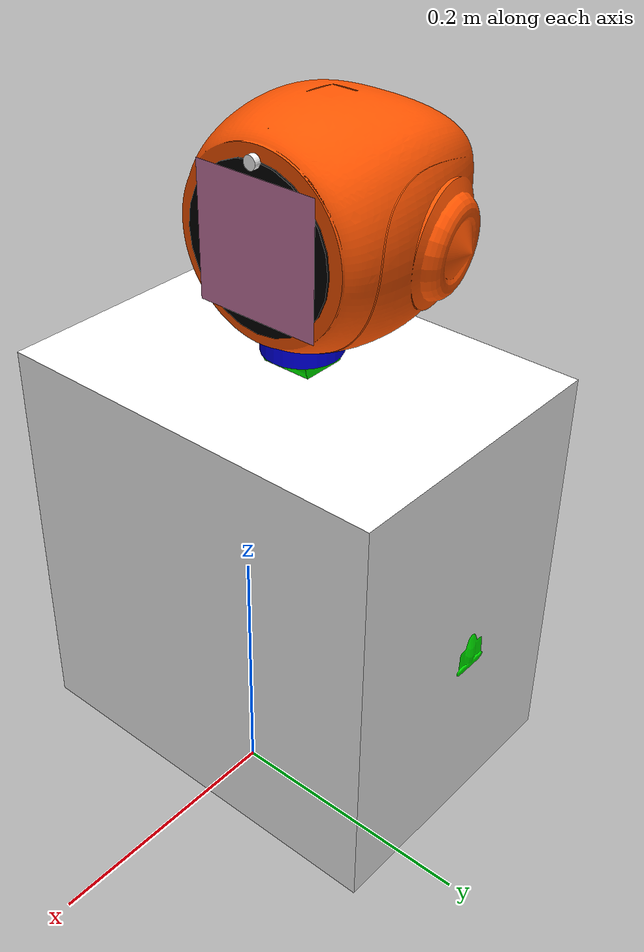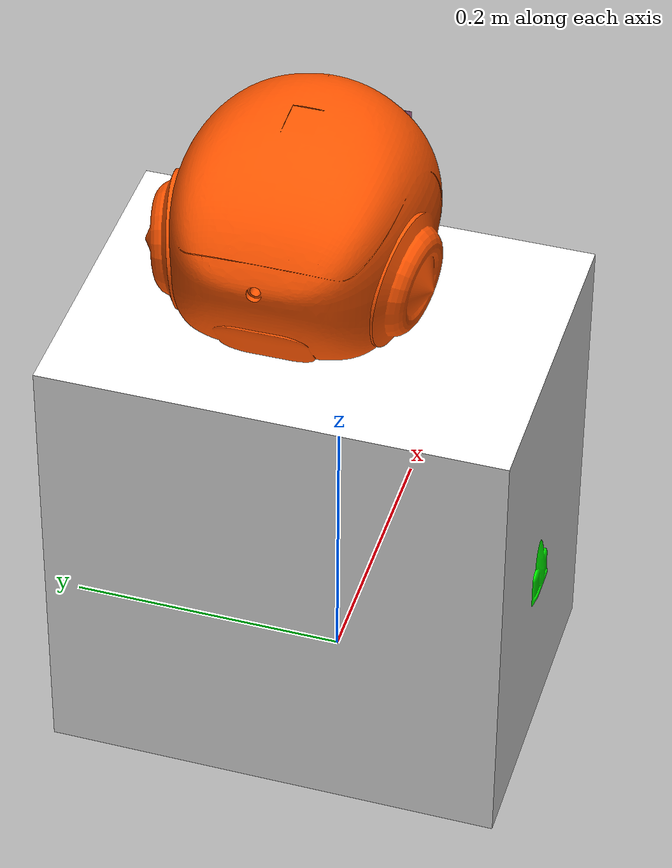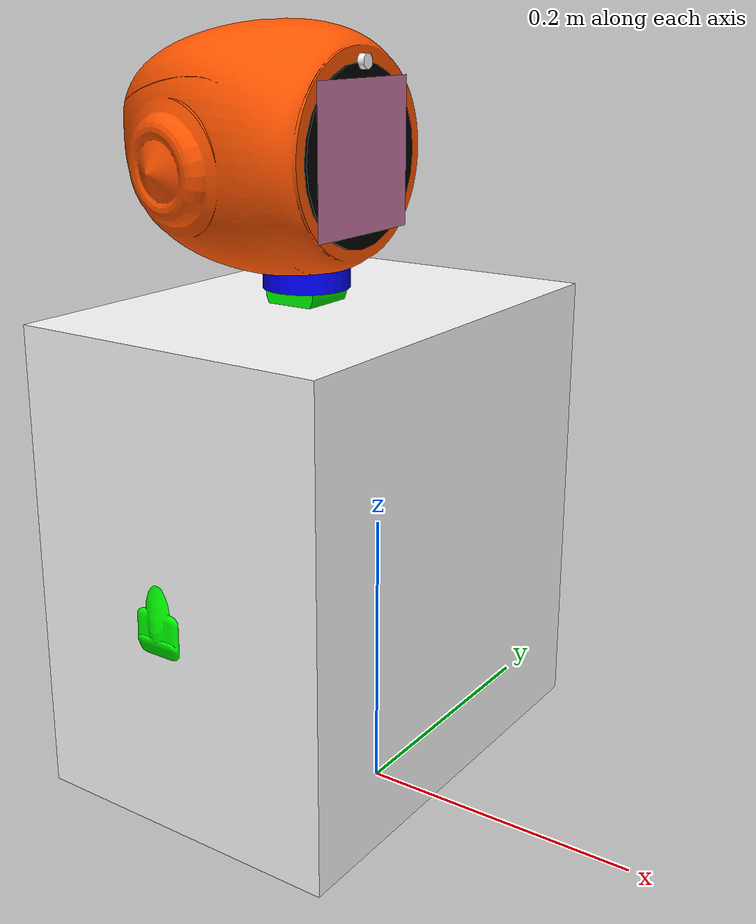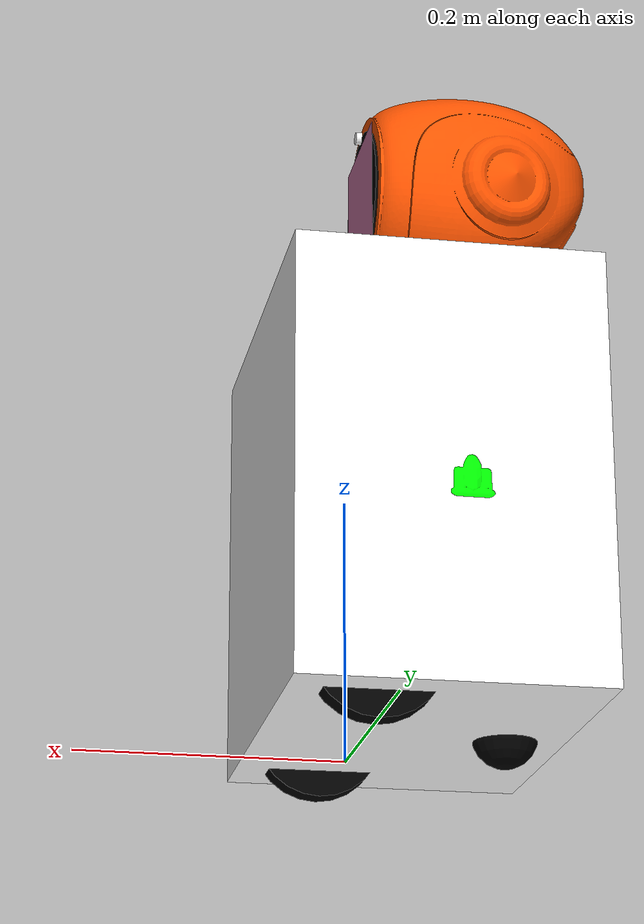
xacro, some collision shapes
<?xml version="1.0"?>
<robot name="smarrtino" xmlns:xacro="http://ros.org/wiki/xacro">

  <xacro:arg name="namespace" default="" />

  <xacro:property name="body_mass" value="0.60" />
  <xacro:property name="body_radius" value="0.1" />

  <xacro:property name="base_w" value="0.22" />
  <xacro:property name="base_l" value="0.20" />
  <xacro:property name="base_h" value="0.33" />

  <xacro:property name="wheel_r" value="0.05" />
  <xacro:property name="wheel_l" value="0.02" />

  <xacro:property name="wheel_friction" value="0.001" />
  <xacro:property name="wheel_damping" value="0.001" />
  <xacro:property name="wheel_max_effort" value="100.0" />
  <xacro:property name="wheel_max_velocity" value="${1 / wheel_r}" /> <!-- 1/r rad/s -> 1 m/s -->

  <xacro:property name="arm_mass" value="0.08" />
  <xacro:property name="arm_radius" value="0.02" />
  <xacro:property name="arm_length" value="0.10" />

  <xacro:property name="arm_max_effort" value="30.0" />
  <xacro:property name="arm_max_velocity" value="1.0" />
  <xacro:property name="arm_friction" value="0.001" />
  <xacro:property name="arm_damping" value="0.01" />
  <xacro:property name="arm_lower_limit" value="${-5*pi/4}" />
  <xacro:property name="arm_upper_limit" value="${pi/4}" />

  <xacro:property name="head_mass" value="0.10" />
  <xacro:property name="head_radius" value="0.05" />
  <xacro:property name="head_max_effort" value="30.0" />
  <xacro:property name="head_max_velocity" value="1.0" />
  <xacro:property name="head_friction" value="0.02" />
  <xacro:property name="head_damping" value="0.02" />
  <xacro:property name="head_pan_lower_limit" value="${-pi/2}" />
  <xacro:property name="head_pan_upper_limit" value="${pi/2}" />
  <xacro:property name="head_tilt_lower_limit" value="${-pi/4}" />
  <xacro:property name="head_tilt_upper_limit" value="${pi/4}" />

  <xacro:include filename="$(find marrtino_gazebo)/urdf/inertia.xacro" />

  <material name="orange"><color rgba="1.0 0.33 0.0 1.0"/></material>
  <material name="red"><color rgba="0.8 0 0 1"/></material>
  <material name="green"><color rgba="0 1 0 1"/></material>
  <material name="blue"><color rgba="0 0 1 1"/></material>
  <material name="black"><color rgba="0 0 0 1.0"/></material>
  <material name="grey"><color rgba="0.7 0.7 0.7 1.0"/></material>
  <material name="white"><color rgba="1 1 1 1.0"/></material>
  <material name="green_t"><color rgba="0 1 0 0.5"/></material>

  <link name="base_footprint"/>

  <link name="base_link">
    <visual>
      <geometry>
        <mesh filename="$(find marrtino_gazebo)/urdf/meshes/smarrtino_body.stl" scale="0.001 0.001 0.001"/>
      </geometry>
      <origin xyz="0 0 0" rpy="0 0 ${pi/2}"/>
      <material name="white"/>
    </visual>

    <collision>
      <geometry>
        <box size="${base_l+0.03} ${base_w+0.10} ${base_h}"/>
      </geometry>
      <origin xyz="-0.05 0 ${base_h/2}" rpy="0 0 0"/>
    </collision>

    <inertial>
      <origin xyz="0 0 0.1" rpy="0 0 0"/>
      <mass value="${body_mass}"/>
      <inertia
        ixx="${(2/5) * body_mass * (base_w*base_w/4)}"
        ixy="0.0"
        ixz="0.0"
        iyy="${(2/5) * body_mass * (base_w*base_w/4)}"
        iyz="0.0"
        izz="${(2/5) * body_mass * (base_w*base_w/4)}"
      />
    </inertial>
  </link>

  <link name="left_wheel">
    <visual>
        <geometry>
            <cylinder radius="${wheel_r}" length="${wheel_l}"/>
        </geometry>
        <origin xyz="0.0 0.0 0.0" rpy="${pi/2} 0.0 0.0"/>
        <material name="black"/>
    </visual>
    <collision>
        <geometry>
            <cylinder radius="${wheel_r}" length="${wheel_l}"/>
        </geometry>
        <origin xyz="0.0 0.0 0.0" rpy="${pi/2} 0.0 0.0"/>
        <surface>
          <friction>
            <ode>
              <mu>1.0</mu>
              <mu2>1.0</mu2>
            </ode>
            <torsional>
              <ode/>
            </torsional>
          </friction>
        </surface>
    </collision>
    <xacro:cylinder_inertial_roll mass="0.1" radius="${wheel_r}" length="${wheel_l}" roll="${pi/2}"/>
  </link>

  <link name="right_wheel">
    <visual>
        <geometry>
            <cylinder radius="${wheel_r}" length="${wheel_l}"/>
        </geometry>
        <origin xyz="0.0 0.0 0.0" rpy="${pi/2} 0.0 0.0"/>
        <material name="black"/>
    </visual>
    <collision>
        <geometry>
            <cylinder radius="${wheel_r}" length="${wheel_l}"/>
        </geometry>
        <origin xyz="0.0 0.0 0.0" rpy="${pi/2} 0.0 0.0"/>
        <surface>
          <friction>
            <ode>
              <mu>1.0</mu>
              <mu2>1.0</mu2>
            </ode>
            <torsional>
              <ode/>
            </torsional>
          </friction>
        </surface>
    </collision>
    <xacro:cylinder_inertial_roll mass="0.1" radius="${wheel_r}" length="${wheel_l}" roll="${pi/2}"/>
  </link>

  <link name="caster_wheel">
    <visual>
        <geometry>
            <sphere radius="${wheel_r/2}"/>
        </geometry>
        <origin xyz="0.0 0.0 0.0" rpy="0.0 0.0 0.0"/>
        <material name="black"/>
    </visual>
    <collision>
        <geometry>
            <sphere radius="${wheel_r/2}"/>
        </geometry>
        <origin xyz="0.0 0.0 0.0" rpy="0.0 0.0 0.0"/>
        <surface>
          <friction>
            <ode>
              <mu>0.001</mu>
              <mu2>0.001</mu2>
            </ode>
            <torsional>
              <ode/>
            </torsional>
          </friction>
        </surface>
    </collision>
    <xacro:sphere_inertial mass="0.2" radius="${wheel_r/2}" />
  </link>

  <link name="top_base_link" />

  <link name="head_link">
    <visual>
      <geometry>
        <mesh filename="$(find marrtino_gazebo)/urdf/meshes/smarrtino_head.stl" scale="0.001 0.001 0.001"/>
      </geometry>
      <origin xyz="0.02 0 -0.4" rpy="0 0 ${pi/2}"/>
      <material name="orange"/>
    </visual>

    <visual>
      <geometry>
          <cylinder radius="0.06" length="0.002"/>
      </geometry>
      <origin xyz="0.045 0 0.01" rpy="0 ${pi/2} 0"/>
      <material name="black"/>
    </visual>

    <visual>
      <geometry>
          <cylinder radius="0.06" length="0.002"/>
      </geometry>
      <origin xyz="0.045 0 0.01" rpy="0 ${pi/2} 0"/>
      <material name="black"/>
    </visual>

    <visual name="front">
      <origin xyz="0.047 0 -0.04" rpy="0 0 0"/>
      <geometry>
        <mesh filename="$(find marrtino_gazebo)/urdf/meshes/face.dae" scale="0.01 0.20 0.20" />
      </geometry>
    </visual>

    <collision>
      <geometry>
        <sphere radius="${head_radius+0.05}"/>
      </geometry>
      <origin xyz="-0.02 0 0.02" rpy="0 0 ${pi/2}"/>
    </collision>

    <xacro:sphere_inertial_roll mass="${head_mass}" radius="${head_radius}" roll="${pi/2}"/>
  </link>

  <link name="base_head_link">
    <visual>
        <geometry>
            <cylinder radius="0.03" length="0.02"/>
        </geometry>
        <origin xyz="0.0 0.0 0.0" rpy="0.0 0.0 0.0"/>
        <material name="blue"/>
    </visual>
  </link>

  <link name="tilt_head_link">
    <visual>
        <geometry>
            <cylinder radius="0.02" length="0.04"/>
        </geometry>
        <origin xyz="0.0 0.0 0.0" rpy="0.0 ${pi/2} ${pi/2}"/>
        <material name="green"/>
    </visual>
    <xacro:sphere_inertial mass="0.01" radius="0.01" />
  </link>

  <link name="camera_optical_link">
    <visual>
        <geometry>
            <cylinder radius="0.005" length="0.005"/>
        </geometry>
        <origin xyz="0.0 0.0 0.0" rpy="0.0 ${pi/2} 0.0"/>
        <material name="white"/>
    </visual>
  </link>

  <link name="imu_link">
    <visual>
      <origin rpy="0 0 0" xyz="0 0 0.0"/>
      <geometry>
        <box size="0.04 0.04 0.02"/>
      </geometry>
      <material name="green"/>
    </visual>
  </link>

  <link name="lidar_link">
    <visual>
        <geometry>
            <cylinder radius="0.02" length="0.03"/>
        </geometry>
        <origin xyz="0.0 0.0 0.0" rpy="0.0 0.0 0.0"/>
        <material name="blue"/>
    </visual>
  </link>

  <joint name="base_joint" type="fixed">
    <parent link="base_footprint"/>
    <child link="base_link"/>
    <origin xyz="0 0 0.02" rpy="0 0.0 0.0"/>
  </joint>

  <joint name="top_base_joint" type="fixed">
    <parent link="base_link"/>
    <child link="top_base_link"/>
    <origin xyz="-0.06 0 ${base_h}" rpy="0 0.0 0.0"/>
  </joint>

  <joint name="tilt_head_joint" type="revolute">
    <parent link="top_base_link"/>
    <child link="tilt_head_link"/>
    <origin xyz="0 0 0.01" rpy="0 0 0"/>
    <axis xyz="0 1 0"/>
    <dynamics damping="${head_damping}" friction="${head_friction}"/>
    <limit effort="${head_max_effort}" velocity="${head_max_velocity}"
           lower="${head_tilt_lower_limit}" upper="${head_tilt_upper_limit}" />
  </joint>

  <joint name="pan_head_joint" type="revolute">
    <parent link="tilt_head_link"/>
    <child link="base_head_link"/>
    <origin xyz="0 0 0.01" rpy="0 0 0"/>
    <axis xyz="0 0 1"/>
    <dynamics damping="${head_damping}" friction="${head_friction}"/>
    <limit effort="${head_max_effort}" velocity="${head_max_velocity}"
           lower="${head_pan_lower_limit}" upper="${head_pan_upper_limit}" />
  </joint>

  <joint name="base_head_joint" type="fixed">
    <parent link="base_head_link"/>
    <child link="head_link"/>
    <origin xyz="0 0 0.07" rpy="0 0 0"/>
  </joint>

  <joint name="camera_optical_joint" type="fixed">
    <parent link="head_link"/>
    <child link="camera_optical_link"/>
    <origin xyz="0.048 0 0.07" rpy="0 0 0"/>
  </joint>

  <joint name="left_wheel_joint" type="continuous">
    <parent link="base_footprint"/>
    <child link="left_wheel"/>
    <origin xyz="0 ${base_w/2+wheel_l/2} ${wheel_r}" rpy="0 0.0 0.0"/>
    <axis xyz="0.0 1.0 0.0"/>
    <dynamics damping="${wheel_damping}" friction="${wheel_friction}"/>
    <limit effort="${wheel_max_effort}" velocity="${wheel_max_velocity}"/>
  </joint>

  <joint name="right_wheel_joint" type="continuous">
    <parent link="base_footprint"/>
    <child link="right_wheel"/>
    <origin xyz="0 ${-base_w/2-wheel_l/2} ${wheel_r}" rpy="0 0.0 0.0"/>
    <axis xyz="0.0 1.0 0.0"/>
    <dynamics damping="${wheel_damping}" friction="${wheel_friction}"/>
    <limit effort="${wheel_max_effort}" velocity="${wheel_max_velocity}"/>
  </joint>

  <joint name="caster_wheel_joint" type="fixed">
    <parent link="base_footprint"/>
    <child link="caster_wheel"/>
    <origin xyz="${-0.12} 0.0 ${wheel_r/2}" rpy="0.0 0.0 0.0"/>
  </joint>

  <joint name="imu_joint" type="fixed">
    <parent link="base_link"/>
    <child link="imu_link"/>
    <origin xyz="-0.02 0 ${base_h/2}" rpy="0.0 0.0 0.0"/>
  </joint>

  <joint name="base_lidar_joint" type="fixed">
    <parent link="base_link"/>
    <child link="lidar_link"/>
    <origin xyz="0.04 0 0.06" rpy="0.0 0.0 0.0"/>
  </joint>

  <link name="left_arm_body">
    <visual>
        <geometry>
          <cylinder radius="0.01" length="0.02"/>
        </geometry>
        <origin xyz="0 0 0" rpy="${pi/2} 0 0"/>
        <material name="green"/>
    </visual>
    <collision>
        <geometry>
          <cylinder radius="0.01" length="0.02"/>
        </geometry>
        <origin xyz="0 0 0" rpy="${pi/2} 0 0"/>
    </collision>
  </link>

  <link name="right_arm_body">
    <visual>
        <geometry>
          <cylinder radius="0.01" length="0.02"/>
        </geometry>
        <origin xyz="0 0 0" rpy="${pi/2} 0 0"/>
        <material name="green"/>
    </visual>
    <collision>
        <geometry>
          <cylinder radius="0.01" length="0.02"/>
        </geometry>
        <origin xyz="0 0 0" rpy="${pi/2} 0 0"/>
    </collision>
  </link>

  <link name="left_arm">
    <visual>
        <geometry>
          <mesh filename="$(find marrtino_gazebo)/urdf/meshes/smarrtino_arm_left.stl" scale="0.001 0.001 0.001"/>
        </geometry>
        <origin xyz="0.065 -0.09 -0.265" rpy="0 0 ${pi/2}"/>
        <material name="green"/>
    </visual>
    <inertial>
      <origin xyz="0 0.045 -0.07" rpy="0.3 0 0"/>
      <mass value="${arm_mass}"/>
      <inertia
        ixx="${(1/12) * arm_mass * (3*arm_radius*arm_radius + arm_length*arm_length)}"
        ixy="0.0"
        ixz="0.0"
        iyy="${(1/12) * arm_mass * (3*arm_radius*arm_radius + arm_length*arm_length)}"
        iyz="0.0"
        izz="${(1/2) * arm_mass * (arm_radius*arm_radius)}"
      />
    </inertial>
  </link>

  <link name="right_arm">
    <visual>
        <geometry>
          <mesh filename="$(find marrtino_gazebo)/urdf/meshes/smarrtino_arm_right.stl" scale="0.001 0.001 0.001"/>
        </geometry>
        <origin xyz="0.065 0.09 -0.265" rpy="0 0 ${pi/2}"/>
        <material name="green"/>
    </visual>
    <inertial>
      <origin xyz="0 -0.045 -0.07" rpy="-0.3 0 0"/>
      <mass value="${arm_mass}"/>
      <inertia
        ixx="${(1/12) * arm_mass * (3*arm_radius*arm_radius + arm_length*arm_length)}"
        ixy="0.0"
        ixz="0.0"
        iyy="${(1/12) * arm_mass * (3*arm_radius*arm_radius + arm_length*arm_length)}"
        iyz="0.0"
        izz="${(1/2) * arm_mass * (arm_radius*arm_radius)}"
      />
    </inertial>
  </link>

  <joint name="left_arm_joint" type="revolute">
    <parent link="base_link"/>
    <child link="left_arm_body"/>
    <origin xyz="${-base_l*0.3} ${base_w*0.35} ${base_h*0.8}" rpy="0 0 0"/>
    <axis xyz="0.0 1.0 0.0"/>
    <dynamics damping="${arm_damping}" friction="${arm_friction}"/>
    <limit effort="${arm_max_effort}" velocity="${arm_max_velocity}"
           lower="${arm_lower_limit}" upper="${arm_upper_limit}" />
  </joint>

  <joint name="right_arm_joint" type="revolute">
    <parent link="base_link"/>
    <child link="right_arm_body"/>
    <origin xyz="${-base_l*0.3} ${-base_w*0.35} ${base_h*0.8}" rpy="0 0 0"/>
    <axis xyz="0.0 1.0 0.0"/>
    <dynamics damping="${arm_damping}" friction="${arm_friction}"/>
    <limit effort="${arm_max_effort}" velocity="${arm_max_velocity}"
           lower="${arm_lower_limit}" upper="${arm_upper_limit}" />
  </joint>

  <joint name="left_arm_body_joint" type="fixed">
    <parent link="left_arm_body"/>
    <child link="left_arm"/>
    <origin xyz="0 0.02 0" rpy="0 0.0 0.0"/>
  </joint>

  <joint name="right_arm_body_joint" type="fixed">
    <parent link="right_arm_body"/>
    <child link="right_arm"/>
    <origin xyz="0 -0.02 0" rpy="0 0.0 0.0"/>
  </joint>

  <gazebo>
    <plugin filename="gz-sim-imu-system"
      name="gz::sim::systems::Imu">
    </plugin>
    <plugin
        filename="gz-sim-pose-publisher-system"
        name="gz::sim::systems::PosePublisher">
        <use_pose_vector_msg>false</use_pose_vector_msg>
        <publish_model_pose>true</publish_model_pose>
        <publish_nested_model_pose>true</publish_nested_model_pose>
    </plugin>
  </gazebo>

  <gazebo reference="imu_link">
    <sensor name="imu" type="imu">
      <always_on>1</always_on>
      <update_rate>10</update_rate>
      <visualize>true</visualize>
      <topic>imu</topic>
      <enable_metrics>true</enable_metrics>
    </sensor>
  </gazebo>

  <gazebo reference="lidar_link">
    <sensor name="lidar" type="gpu_lidar">
      <pose relative_to='lidar_link'>0.021 0 0 0 0 0</pose>
      <always_on>1</always_on>
      <update_rate>10</update_rate>
      <visualize>true</visualize>
      <topic>scan</topic>
      <gz_frame_id>lidar_link</gz_frame_id>  <!-- ignore warning not defined in SDF -->
      <ray>
        <scan>
            <horizontal>
                <samples>640</samples>
                <resolution>1</resolution>
                <min_angle>${-pi*3/8}</min_angle>
                <max_angle>${pi*3/8}</max_angle>
            </horizontal>
            <vertical>
                <samples>1</samples>
                <resolution>0.01</resolution>
                <min_angle>0</min_angle>
                <max_angle>0</max_angle>
            </vertical>
        </scan>
        <range>
            <min>0.05</min>
            <max>10.0</max>
            <resolution>0.01</resolution>
        </range>
      </ray>
    </sensor>
  </gazebo>

  <gazebo reference="camera_optical_link">
    <sensor name="camera" type="camera">
      <camera>
        <horizontal_fov>1.5</horizontal_fov>
        <image>
          <width>640</width>
          <height>480</height>
          <format>R8G8B8</format>
        </image>
        <clip>
          <near>0.01</near>
          <far>10</far>
        </clip>
        <noise>
          <type>gaussian</type>
          <!-- Noise is sampled independently per pixel on each frame.
               That pixel's noise value is added to each of its color
               channels, which at that point lie in the range [0,1]. -->
          <mean>0.0</mean>
          <stddev>0.001</stddev>
        </noise>
        <camera_info_topic>camera/camera_info</camera_info_topic>
      </camera>
      <always_on>1</always_on>
      <update_rate>5</update_rate>
      <visualize>true</visualize>
      <topic>camera/image</topic>
    </sensor>
  </gazebo>

  <!-- top view camera -->

  <xacro:arg name="topview_camera" default="false" />

  <xacro:if value="$(arg topview_camera)">

  <link name="top_camera_link">
    <visual>
      <geometry>
        <cylinder radius="0.005" length="0.006"/>
      </geometry>
      <material name="grey"/>
      <origin xyz="0 0 0" rpy="0 0 0" />
    </visual>
  </link>

  <link name="top_camera_optical_link" />

  <joint name="top_camera_joint" type="fixed">
    <parent link="base_footprint"/>
    <child link="top_camera_link"/>
    <origin xyz="0 0 2" rpy="0.0 ${pi} 0.0"/>
  </joint>

  <joint name="top_camera_optical_joint" type="fixed">
    <parent link="top_camera_link"/>
    <child link="top_camera_optical_link"/>
    <origin xyz="0 0 0.006" rpy="0 ${-pi/2} 0"/>
  </joint>

  <gazebo reference="top_camera_optical_link">
    <sensor name="top_camera" type="camera">
      <camera>
        <horizontal_fov>2.0</horizontal_fov>
        <image>
          <width>320</width>
          <height>240</height>
          <format>R8G8B8</format>
        </image>
        <clip>
          <near>0.001</near>
          <far>15</far>
        </clip>
        <camera_info_topic>top_camera/camera_info</camera_info_topic>
      </camera>
      <always_on>1</always_on>
      <update_rate>1</update_rate>
      <visualize>true</visualize>
      <topic>top_camera/image</topic>

      <gz_frame_id>top_camera_optical_link</gz_frame_id>

    </sensor>
  </gazebo>

  </xacro:if>

  <ros2_control name="GazeboSimSystem" type="system">
    <hardware>
      <plugin>gz_ros2_control/GazeboSimSystem</plugin>
    </hardware>
    <joint name="left_wheel_joint">
      <command_interface name="velocity">
        <param name="min">${-wheel_max_velocity}</param>
        <param name="max">${wheel_max_velocity}</param>
      </command_interface>
      <state_interface name="position"/>
      <state_interface name="velocity"/>
    </joint>
    <joint name="right_wheel_joint">
      <command_interface name="velocity">
        <param name="min">${-wheel_max_velocity}</param>
        <param name="max">${wheel_max_velocity}</param>
      </command_interface>
      <state_interface name="position"/>
      <state_interface name="velocity"/>
    </joint>
    <joint name="left_arm_joint">
      <command_interface name="effort">
        <param name="min">${-arm_max_effort}</param>
        <param name="max">${arm_max_effort}</param>
      </command_interface>
      <command_interface name="velocity">
        <param name="min">${-arm_max_velocity}</param>
        <param name="max">${arm_max_velocity}</param>
      </command_interface>
      <command_interface name="position">
        <param name="min">${arm_lower_limit}</param>
        <param name="max">${arm_upper_limit}</param>
      </command_interface>
      <state_interface name="position"/>
      <state_interface name="velocity"/>
    </joint>
    <joint name="right_arm_joint">
      <command_interface name="effort">
        <param name="min">${-arm_max_effort}</param>
        <param name="max">${arm_max_effort}</param>
      </command_interface>
      <command_interface name="velocity">
        <param name="min">${-arm_max_velocity}</param>
        <param name="max">${arm_max_velocity}</param>
      </command_interface>
      <command_interface name="position">
        <param name="min">${arm_lower_limit}</param>
        <param name="max">${arm_upper_limit}</param>
      </command_interface>
      <state_interface name="position"/>
      <state_interface name="velocity"/>
    </joint>
    <joint name="pan_head_joint">
      <command_interface name="effort">
        <param name="min">${-head_max_effort}</param>
        <param name="max">${head_max_effort}</param>
      </command_interface>
      <command_interface name="velocity">
        <param name="min">${-head_max_velocity}</param>
        <param name="max">${head_max_velocity}</param>
      </command_interface>
      <command_interface name="position">
        <param name="min">${head_pan_lower_limit}</param>
        <param name="max">${head_pan_upper_limit}</param>
      </command_interface>
      <state_interface name="position"/>
      <state_interface name="velocity"/>
    </joint>
    <joint name="tilt_head_joint">
      <command_interface name="effort">
        <param name="min">${-head_max_effort}</param>
        <param name="max">${head_max_effort}</param>
      </command_interface>
      <command_interface name="velocity">
        <param name="min">${-head_max_velocity}</param>
        <param name="max">${head_max_velocity}</param>
      </command_interface>
      <command_interface name="position">
        <param name="min">${head_tilt_lower_limit}</param>
        <param name="max">${head_tilt_upper_limit}</param>
      </command_interface>
      <state_interface name="position"/>
      <state_interface name="velocity"/>
    </joint>
  </ros2_control>

  <gazebo>
    <!-- Joint state publisher -->
    <plugin filename="gz_ros2_control-system" name="gz_ros2_control::GazeboSimROS2ControlPlugin">
      <ros>
        <namespace>$(arg namespace)</namespace>
      </ros>
      <parameters>$(find gz_ros2_control_demos)/config/diff_drive_controller.yaml</parameters>
    </plugin>
  </gazebo>

</robot>

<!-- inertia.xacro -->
<robot xmlns:xacro="http://ros.org/wiki/xacro">

  <xacro:macro name="sphere_inertial" params="mass radius">
    <inertial>
      <origin xyz="0 0 0" rpy="0 0 0"/> <mass value="${mass}"/>
      <inertia
        ixx="${(2/5) * mass * (radius*radius)}"
        ixy="0.0"
        ixz="0.0"
        iyy="${(2/5) * mass * (radius*radius)}"
        iyz="0.0"
        izz="${(2/5) * mass * (radius*radius)}"
      />
    </inertial>
  </xacro:macro>

  <xacro:macro name="sphere_inertial_roll" params="mass radius roll">
    <inertial>
      <origin xyz="0 0 0" rpy="${roll} 0 0"/> <mass value="${mass}"/>
      <inertia
        ixx="${(2/5) * mass * (radius*radius)}"
        ixy="0.0"
        ixz="0.0"
        iyy="${(2/5) * mass * (radius*radius)}"
        iyz="0.0"
        izz="${(2/5) * mass * (radius*radius)}"
      />
    </inertial>
  </xacro:macro>

  <xacro:macro name="cylinder_inertial" params="mass radius length">
    <inertial>
      <origin xyz="0 0 0" rpy="0 0 0"/>
      <mass value="${mass}"/>
      <inertia
        ixx="${(1/12) * mass * (3*radius*radius + length*length)}"
        ixy="0.0"
        ixz="0.0"
        iyy="${(1/12) * mass * (3*radius*radius + length*length)}"
        iyz="0.0"
        izz="${(1/2) * mass * (radius*radius)}"
      />
    </inertial>
  </xacro:macro>

  <xacro:macro name="cylinder_inertial_roll" params="mass radius length roll">
    <inertial>
      <origin xyz="0 0 0" rpy="${roll} 0 0"/>
      <mass value="${mass}"/>
      <inertia
        ixx="${(1/12) * mass * (3*radius*radius + length*length)}"
        ixy="0.0"
        ixz="0.0"
        iyy="${(1/12) * mass * (3*radius*radius + length*length)}"
        iyz="0.0"
        izz="${(1/2) * mass * (radius*radius)}"
      />
    </inertial>
  </xacro:macro>

  <xacro:macro name="box_inertial" params="mass x_dim y_dim z_dim">
    <inertial>
      <origin xyz="0 0 0" rpy="0 0 0"/>
      <mass value="${mass}"/>
      <inertia
        ixx="${(1/12) * mass * (y_dim*y_dim + z_dim*z_dim)}"
        ixy="0.0"
        ixz="0.0"
        iyy="${(1/12) * mass * (x_dim*x_dim + z_dim*z_dim)}"
        iyz="0.0"
        izz="${(1/12) * mass * (x_dim*x_dim + y_dim*y_dim)}"
      />
    </inertial>
  </xacro:macro>

</robot>
